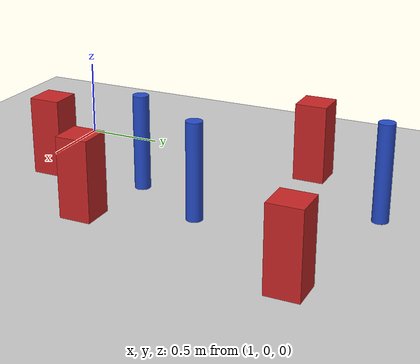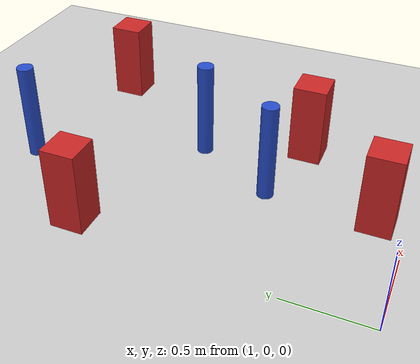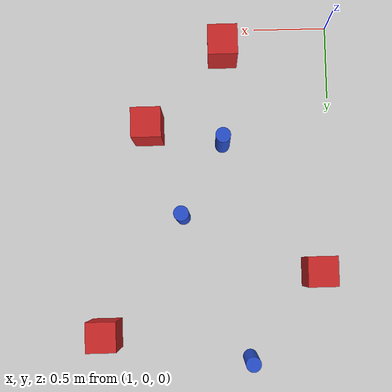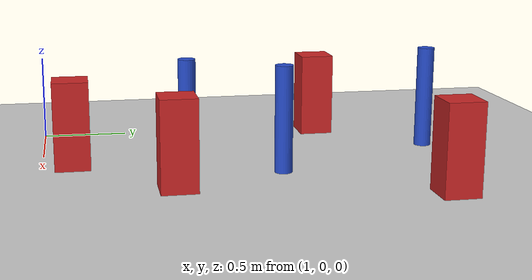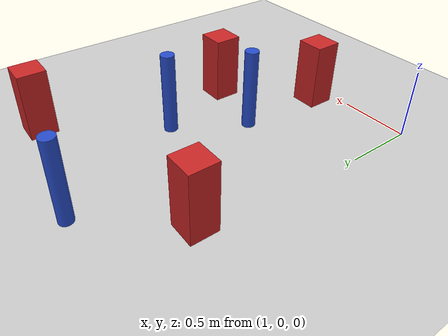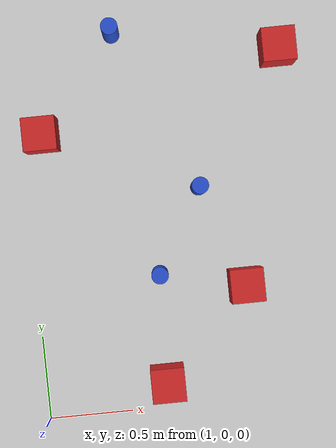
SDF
<sdf version="1.6">
 <world name="default">
  <model name="ground_plane">
   <static>1</static>
   <link name="link">
    <collision name="collision">
     <geometry><plane><normal>0 0 1</normal><size>100 100</size></plane></geometry>
     <surface><friction><ode><mu>100</mu><mu2>50</mu2></ode></friction></surface>
    </collision>
    <visual name="visual">
     <cast_shadows>0</cast_shadows>
     <geometry><plane><normal>0 0 1</normal><size>100 100</size></plane></geometry>
     <material>
      <ambient>1.0 1.0 1.0 1.0</ambient>
      <diffuse>0.8 0.8 0.8 1.0</diffuse>
      <specular>0.01 0.01 0.01 1.000000</specular>
     </material>
    </visual>
   </link>
  </model>
  <model name="pole_obstacle101">
   <static>true</static>
   <pose>1.59274613654 2.28603636847 2.88873142074e-08 -9.90536689791e-09 4.6021994899e-07 -1.20965994959e-07</pose>
   <link name="link">
    <pose>0 0 0.3 0 -0 0</pose>
    <inertial>
     <mass>1</mass>
     <inertia><ixx>0.145833</ixx><ixy>0</ixy><ixz>0</ixz><iyy>0.145833</iyy><iyz>0</iyz><izz>0.125</izz></inertia>
    </inertial>
    <collision name="collision">
     <geometry><cylinder><radius>0.05</radius><length>.6</length></cylinder></geometry>
    </collision>
    <visual name="visual">
     <geometry><cylinder><radius>0.05</radius><length>.6</length></cylinder></geometry>
     <material>
      <script><name>Gazebo/Blue</name><uri>file://media/materials/scripts/gazebo.material</uri></script>
     </material>
    </visual>
   </link>
  </model>
  <model name="square_post_obstacle116">
   <static>true</static>
   <pose>1.11979004734 1.71169048348 8.22691968438e-08 7.2212513382e-06 -7.54495500217e-07 2.29674213826e-05</pose>
   <link name="link">
    <pose>0 0 0.25 0 -0 0</pose>
    <inertial>
     <mass>100</mass>
     <inertia>
      <ixx>0.166667</ixx>
      <ixy>0</ixy>
      <ixz>0</ixz>
      <iyy>0.166667</iyy>
      <iyz>0</iyz>
      <izz>0.166667</izz>
     </inertia>
    </inertial>
    <collision name="collision"><geometry><box><size>.2 .2 .5</size></box></geometry></collision>
    <visual name="visual">
     <geometry><box><size>.2 .2 .5</size></box></geometry>
     <material>
      <script><name>Gazebo/Red</name><uri>file://media/materials/scripts/gazebo.material</uri></script>
     </material>
    </visual>
   </link>
  </model>
  <model name="pole_obstacle141">
   <static>true</static>
   <pose>2.03128316658 1.31391764888 2.88873142074e-08 -9.90536689629e-09 4.60219948994e-07 -1.20965994957e-07</pose>
   <link name="link">
    <pose>0 0 0.3 0 -0 0</pose>
    <inertial>
     <mass>1</mass>
     <inertia><ixx>0.145833</ixx><ixy>0</ixy><ixz>0</ixz><iyy>0.145833</iyy><iyz>0</iyz><izz>0.125</izz></inertia>
    </inertial>
    <collision name="collision">
     <geometry><cylinder><radius>0.05</radius><length>.6</length></cylinder></geometry>
    </collision>
    <visual name="visual">
     <geometry><cylinder><radius>0.05</radius><length>.6</length></cylinder></geometry>
     <material>
      <script><name>Gazebo/Blue</name><uri>file://media/materials/scripts/gazebo.material</uri></script>
     </material>
    </visual>
   </link>
  </model>
  <model name="square_post_obstacle161">
   <static>true</static>
   <pose>1.73333586975 0.165960571735 8.22691968438e-08 7.2212513382e-06 -7.54495500217e-07 2.29674213826e-05</pose>
   <link name="link">
    <pose>0 0 0.25 0 -0 0</pose>
    <inertial>
     <mass>100</mass>
     <inertia>
      <ixx>0.166667</ixx>
      <ixy>0</ixy>
      <ixz>0</ixz>
      <iyy>0.166667</iyy>
      <iyz>0</iyz>
      <izz>0.166667</izz>
     </inertia>
    </inertial>
    <collision name="collision"><geometry><box><size>.2 .2 .5</size></box></geometry></collision>
    <visual name="visual">
     <geometry><box><size>.2 .2 .5</size></box></geometry>
     <material>
      <script><name>Gazebo/Red</name><uri>file://media/materials/scripts/gazebo.material</uri></script>
     </material>
    </visual>
   </link>
  </model>
  <model name="pole_obstacle178">
   <static>true</static>
   <pose>1.74711648371 0.815507520064 2.88873142074e-08 -9.90536689692e-09 4.60219948993e-07 -1.20965994958e-07</pose>
   <link name="link">
    <pose>0 0 0.3 0 -0 0</pose>
    <inertial>
     <mass>1</mass>
     <inertia><ixx>0.145833</ixx><ixy>0</ixy><ixz>0</ixz><iyy>0.145833</iyy><iyz>0</iyz><izz>0.125</izz></inertia>
    </inertial>
    <collision name="collision">
     <geometry><cylinder><radius>0.05</radius><length>.6</length></cylinder></geometry>
    </collision>
    <visual name="visual">
     <geometry><cylinder><radius>0.05</radius><length>.6</length></cylinder></geometry>
     <material>
      <script><name>Gazebo/Blue</name><uri>file://media/materials/scripts/gazebo.material</uri></script>
     </material>
    </visual>
   </link>
  </model>
  <model name="square_post_obstacle189">
   <static>true</static>
   <pose>2.25268386021 0.703580271355 8.22691968438e-08 7.2212513382e-06 -7.54495500217e-07 2.29674213826e-05</pose>
   <link name="link">
    <pose>0 0 0.25 0 -0 0</pose>
    <inertial>
     <mass>100</mass>
     <inertia>
      <ixx>0.166667</ixx>
      <ixy>0</ixy>
      <ixz>0</ixz>
      <iyy>0.166667</iyy>
      <iyz>0</iyz>
      <izz>0.166667</izz>
     </inertia>
    </inertial>
    <collision name="collision"><geometry><box><size>.2 .2 .5</size></box></geometry></collision>
    <visual name="visual">
     <geometry><box><size>.2 .2 .5</size></box></geometry>
     <material>
      <script><name>Gazebo/Red</name><uri>file://media/materials/scripts/gazebo.material</uri></script>
     </material>
    </visual>
   </link>
  </model>
  <model name="square_post_obstacle213">
   <static>true</static>
   <pose>2.57338572127 2.09837037033 8.22691968438e-08 7.2212513382e-06 -7.54495500217e-07 2.29674213826e-05</pose>
   <link name="link">
    <pose>0 0 0.25 0 -0 0</pose>
    <inertial>
     <mass>100</mass>
     <inertia>
      <ixx>0.166667</ixx>
      <ixy>0</ixy>
      <ixz>0</ixz>
      <iyy>0.166667</iyy>
      <iyz>0</iyz>
      <izz>0.166667</izz>
     </inertia>
    </inertial>
    <collision name="collision"><geometry><box><size>.2 .2 .5</size></box></geometry></collision>
    <visual name="visual">
     <geometry><box><size>.2 .2 .5</size></box></geometry>
     <material>
      <script><name>Gazebo/Red</name><uri>file://media/materials/scripts/gazebo.material</uri></script>
     </material>
    </visual>
   </link>
  </model>
 </world>
</sdf>
